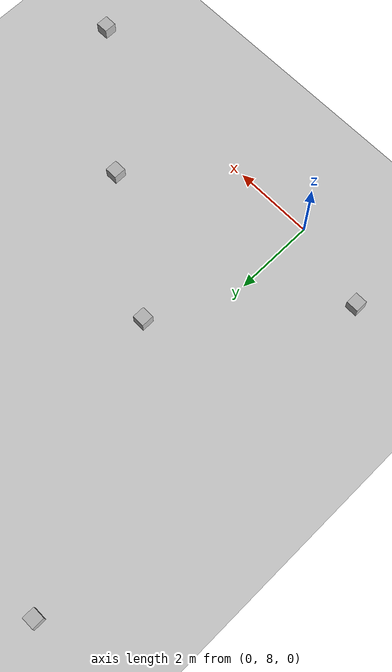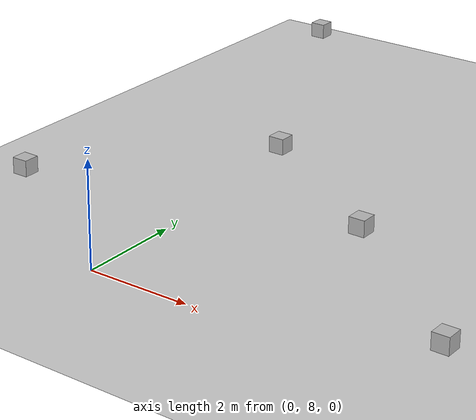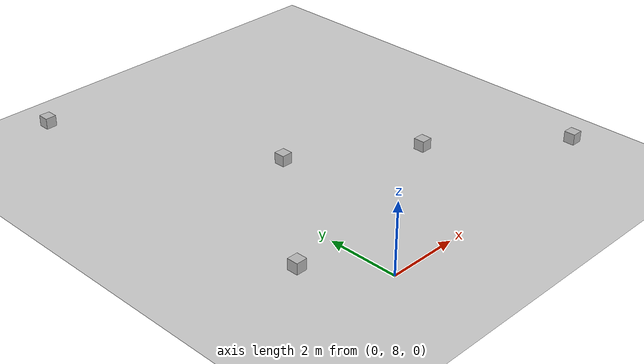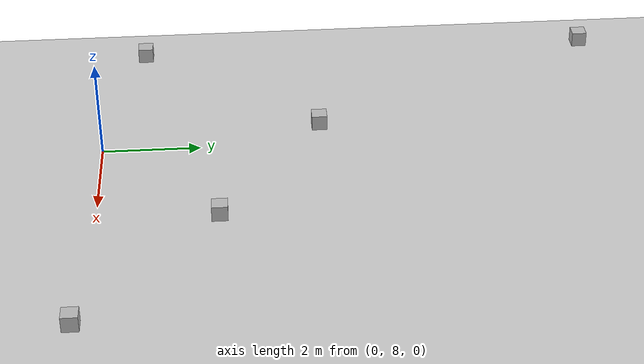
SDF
<sdf version="1.4">
 <world name="default">
  <include><uri>model://ground_plane</uri></include>
  <include><uri>model://sun</uri></include>
  <include><pose>0.74 -0.11 0.77 0 0 0</pose><uri>model://cube</uri></include>
  <physics type="ode">
   <real_time_update_rate>1000.0</real_time_update_rate>
   <gravity>0.0 0.0 -9.81</gravity>
  </physics>
 </world>
</sdf>

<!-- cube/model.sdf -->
<sdf version="1.5">
    <model name="cube">
        <static>true</static>
        <link name="link">
            <collision name="collision1">
                <pose>0 12.5 0.1 0 0 0</pose>
                <geometry>
                    <mesh>
                        <uri>model://cube/meshes/cube.dae</uri>
                    </mesh>
                </geometry>
            </collision>
            <visual name="visual1">

              <pose>0 12.5 0.1 0 0 0</pose>
              <geometry>
              <mesh>
                 <uri>model://cube/meshes/cube.dae</uri>
              </mesh>
              </geometry>

              <material>
                  <script>
                      <uri>model://cube/materials/scripts</uri>
                      <uri>model://cube/materials/textures</uri>
                      <name>cubeMat/Diffuse</name>
                  </script>
              </material>
             </visual>

             <collision name="collision2">
                <pose>3 10.5 0.1 0 0 0</pose>
                <geometry>
                    <mesh>
                        <uri>model://cube/meshes/cube.dae</uri>
                    </mesh>
                </geometry>
            </collision>
            <visual name="visual2">

              <pose>3 10.5 0.1 0 0 0</pose>
              <geometry>
              <mesh>
                 <uri>model://cube/meshes/cube.dae</uri>
              </mesh>
              </geometry>

              <material>
                  <script>
                      <uri>model://cube/materials/scripts</uri>
                      <uri>model://cube/materials/textures</uri>
                      <name>cubeMat/Diffuse</name>
                  </script>
              </material>
             </visual>

             <collision name="collision3">
                <pose>-3 9 0.1 0 0 0</pose>
                <geometry>
                    <mesh>
                        <uri>model://cube/meshes/cube.dae</uri>
                    </mesh>
                </geometry>
            </collision>
            <visual name="visual3">

              <pose>-3 9 0.1 0 0 0</pose>
              <geometry>
              <mesh>
                 <uri>model://cube/meshes/cube.dae</uri>
              </mesh>
              </geometry>

              <material>
                  <script>
                      <uri>model://cube/materials/scripts</uri>
                      <uri>model://cube/materials/textures</uri>
                      <name>cubeMat/Diffuse</name>
                  </script>
              </material>
             </visual>

             <collision name="collision4">
                <pose>6 8 0.1 0 0 0</pose>
                <geometry>
                    <mesh>
                        <uri>model://cube/meshes/cube.dae</uri>
                    </mesh>
                </geometry>
            </collision>
            <visual name="visual4">

              <pose>6 8 0.1 0 0 0</pose>
              <geometry>
              <mesh>
                 <uri>model://cube/meshes/cube.dae</uri>
              </mesh>
              </geometry>

              <material>
                  <script>
                      <uri>model://cube/materials/scripts</uri>
                      <uri>model://cube/materials/textures</uri>
                      <name>cubeMat/Diffuse</name>
                  </script>
              </material>
             </visual>

             <collision name="collision5">
                <pose>-3 18.3 0.1 0 0 0</pose>
                <geometry>
                    <mesh>
                        <uri>model://cube/meshes/cube.dae</uri>
                    </mesh>
                </geometry>
            </collision>
            <visual name="visual5">

              <pose>-3 18.3 0.1 0 0 0</pose>
              <geometry>
              <mesh>
                 <uri>model://cube/meshes/cube.dae</uri>
              </mesh>
              </geometry>

              <material>
                  <script>
                      <uri>model://cube/materials/scripts</uri>
                      <uri>model://cube/materials/textures</uri>
                      <name>cubeMat/Diffuse</name>
                  </script>
              </material>
             </visual>
        </link>
    </model>
</sdf>
